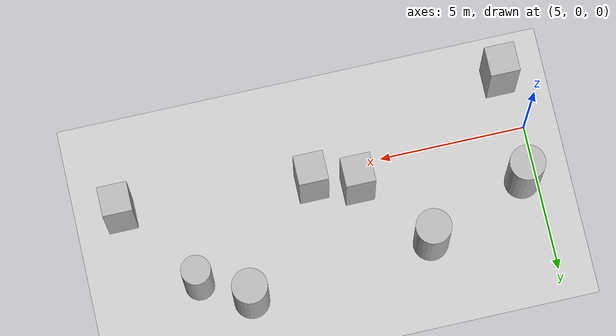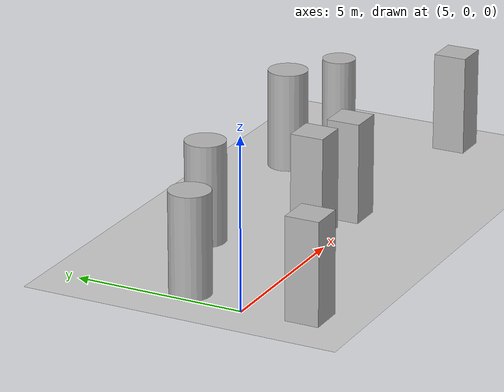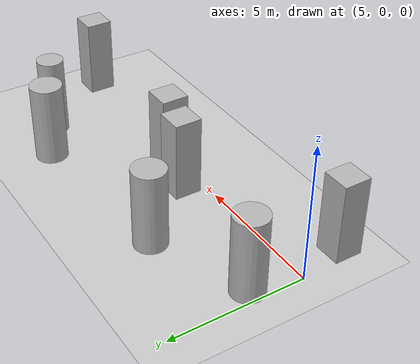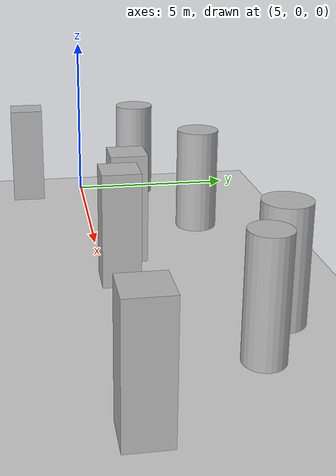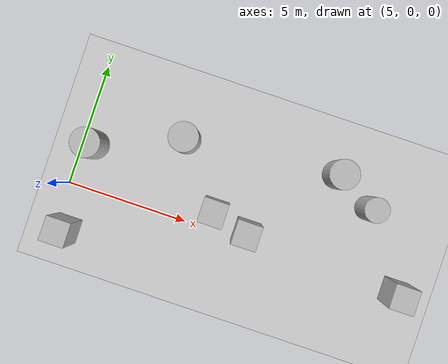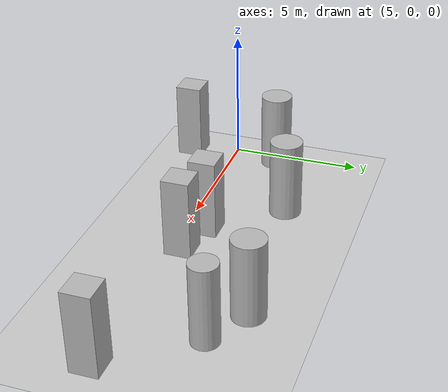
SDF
<sdf version="1.6">
 <world name="main_world">
  <include><uri>model://sun</uri></include>
  <include><uri>model://ground_plane</uri></include>
  <physics name="default_physics" default="0" type="ode">
   <gravity>0 0 -9.8066</gravity>
   <ode>
    <solver><type>quick</type><iters>10</iters><sor>1.3</sor></solver>
    <constraints>
     <cfm>0</cfm>
     <erp>0.2</erp>
     <contact_max_correcting_vel>100</contact_max_correcting_vel>
     <contact_surface_layer>0.001</contact_surface_layer>
    </constraints>
   </ode>
   <max_step_size>0.004</max_step_size>
   <real_time_factor>1</real_time_factor>
   <real_time_update_rate>250</real_time_update_rate>
  </physics>
  <model name="obstacle_exam_1">
   <static>true</static>
   <pose>5.5 1.8 1.5 0 0 0</pose>
   <link name="link">
    <collision name="collision">
     <geometry><cylinder><radius>0.6</radius><length>3.0</length></cylinder></geometry>
    </collision>
    <visual name="visual">
     <geometry><cylinder><radius>0.6</radius><length>3.0</length></cylinder></geometry>
    </visual>
   </link>
  </model>
  <model name="obstacle_exam_2">
   <static>true</static>
   <pose>5.5 -1.8 1.5 0 0 0</pose>
   <link name="link">
    <collision name="collision"><geometry><box><size>1.0 1.0 3.0</size></box></geometry></collision>
    <visual name="visual"><geometry><box><size>1.0 1.0 3.0</size></box></geometry></visual>
   </link>
  </model>
  <model name="obstacle_exam_3">
   <static>true</static>
   <pose>9.0 3.2 1.5 0 0 0</pose>
   <link name="link">
    <collision name="collision">
     <geometry><cylinder><radius>0.6</radius><length>3.0</length></cylinder></geometry>
    </collision>
    <visual name="visual">
     <geometry><cylinder><radius>0.6</radius><length>3.0</length></cylinder></geometry>
    </visual>
   </link>
  </model>
  <model name="obstacle_exam_4">
   <static>true</static>
   <pose>11.0 0.8 1.5 0 0 0</pose>
   <link name="link">
    <collision name="collision"><geometry><box><size>1.0 1.0 3.0</size></box></geometry></collision>
    <visual name="visual"><geometry><box><size>1.0 1.0 3.0</size></box></geometry></visual>
   </link>
  </model>
  <model name="obstacle_exam_5">
   <static>true</static>
   <pose>15.3 3.8 1.5 0 0 0</pose>
   <link name="link">
    <collision name="collision">
     <geometry><cylinder><radius>0.6</radius><length>3.0</length></cylinder></geometry>
    </collision>
    <visual name="visual">
     <geometry><cylinder><radius>0.6</radius><length>3.0</length></cylinder></geometry>
    </visual>
   </link>
  </model>
  <model name="obstacle_exam_6">
   <static>true</static>
   <pose>12.5 0.4 1.5 0 0 0</pose>
   <link name="link">
    <collision name="collision"><geometry><box><size>1.0 1.0 3.0</size></box></geometry></collision>
    <visual name="visual"><geometry><box><size>1.0 1.0 3.0</size></box></geometry></visual>
   </link>
  </model>
  <model name="obstacle_exam_7">
   <static>true</static>
   <pose>16.9 2.9 1.5 0 0 0</pose>
   <link name="link">
    <collision name="collision">
     <geometry><cylinder><radius>0.5</radius><length>3.0</length></cylinder></geometry>
    </collision>
    <visual name="visual">
     <geometry><cylinder><radius>0.5</radius><length>3.0</length></cylinder></geometry>
    </visual>
   </link>
  </model>
  <model name="obstacle_exam_8">
   <static>true</static>
   <pose>19.0 0.0 1.5 0 0 0</pose>
   <link name="link">
    <collision name="collision"><geometry><box><size>1.0 1.0 3.0</size></box></geometry></collision>
    <visual name="visual"><geometry><box><size>1.0 1.0 3.0</size></box></geometry></visual>
   </link>
  </model>
 </world>
</sdf>
